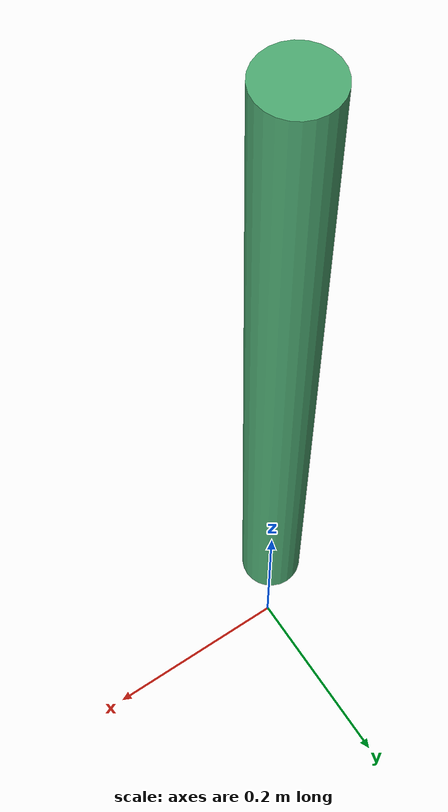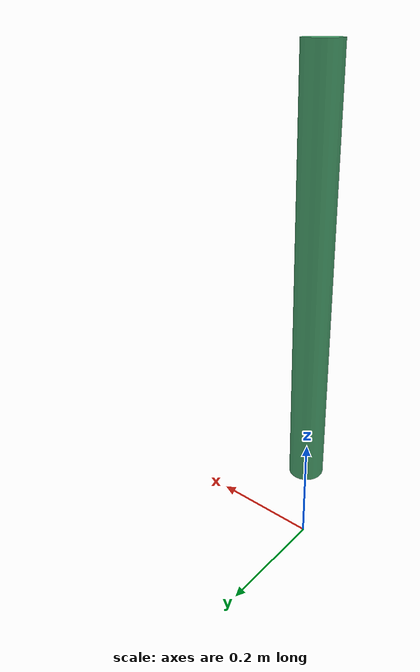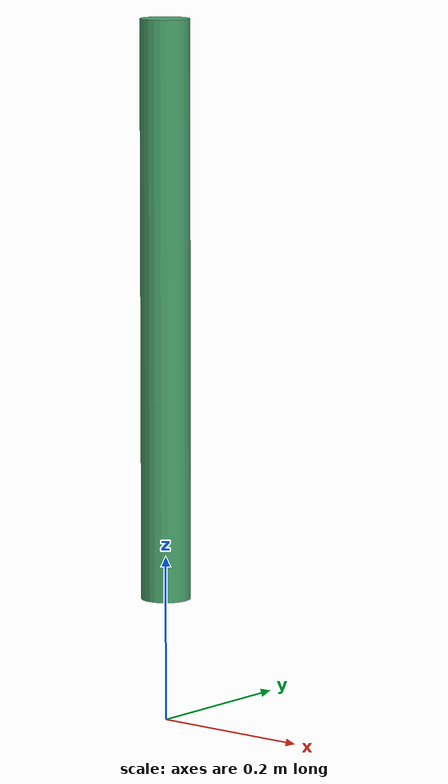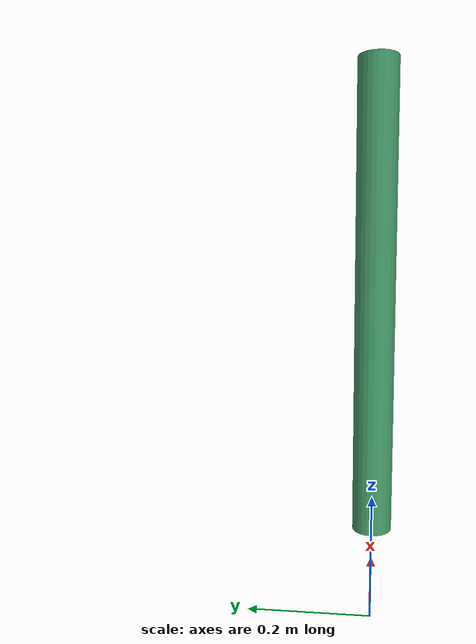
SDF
<?xml version='1.0'?>
<sdf version="1.6">
  <model name="maize_cylinder">
    <pose>0 0 0.5 0 0 0</pose>
    <static>true</static>
    <link name="link">
        <inertial>
          <inertia>
            <ixx>0.0000001</ixx>
            <ixy>0</ixy>
            <ixz>0</ixz>
            <iyy>0.0000001</iyy>
            <iyz>0</iyz>
            <izz>0.0000001</izz>
          </inertia>
          <mass>1.0</mass>
        </inertial>
      <collision name="collision">
        <geometry>
          <cylinder>
	    <radius>0.03</radius>
	    <length>0.7</length>
          </cylinder>
        </geometry>
      </collision>
      <visual name="visual">
        <geometry>
          <cylinder>
	    <radius>0.03</radius>
	    <length>0.7</length>
          </cylinder>
        </geometry>
        <material>
		<ambient>0.437790 0.985028 0.656685 1.0</ambient>
		<diffuse>0.297093 0.668460 0.445640 1.0</diffuse>
		<specular>0.000000 0.000000 0.000000 1.0</specular>
		<emissive>0.0 0.0 0.0 0.0</emissive>
        </material>
      </visual>
    </link>
  </model>
</sdf>
